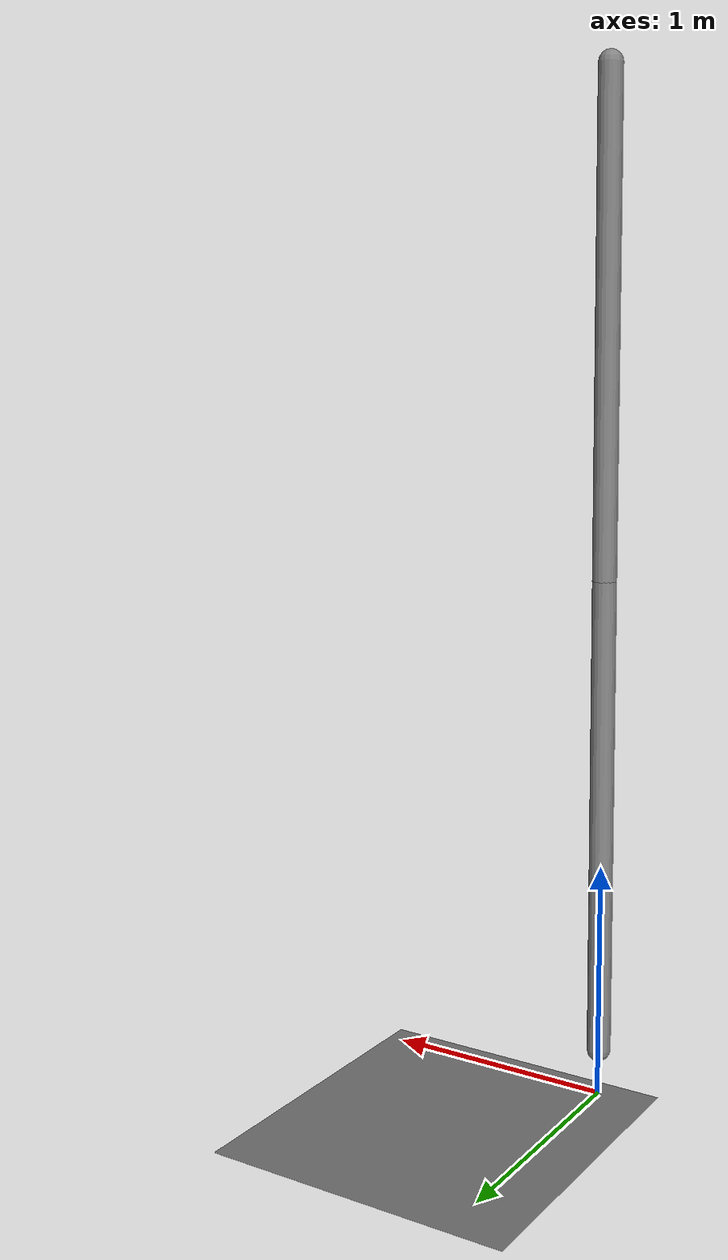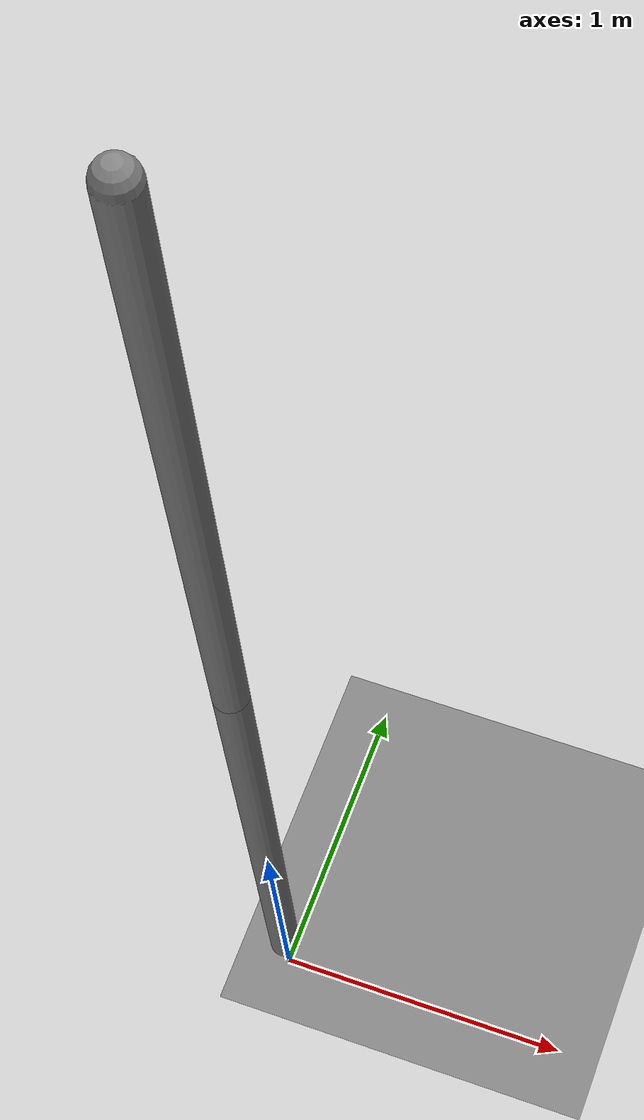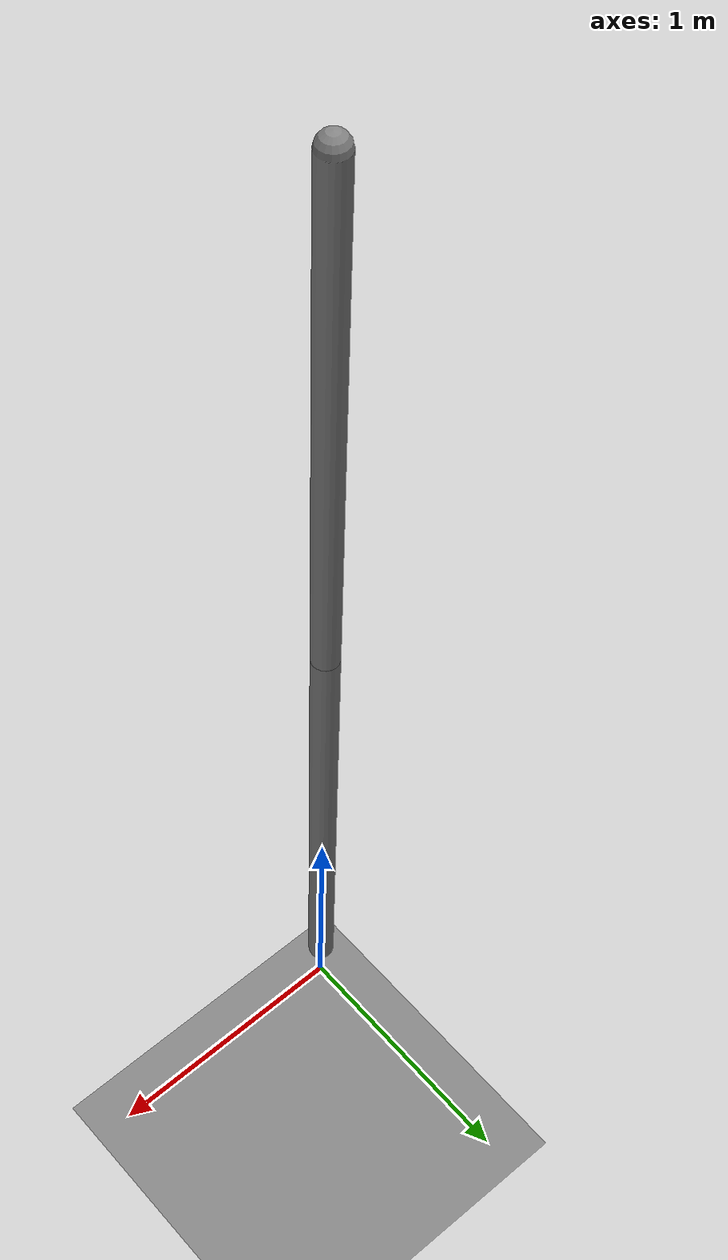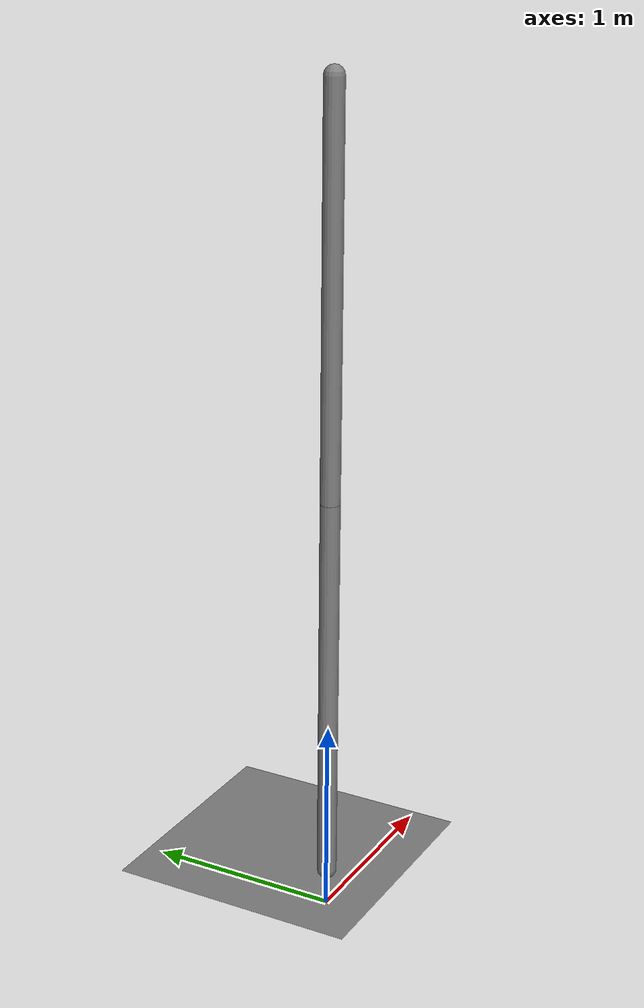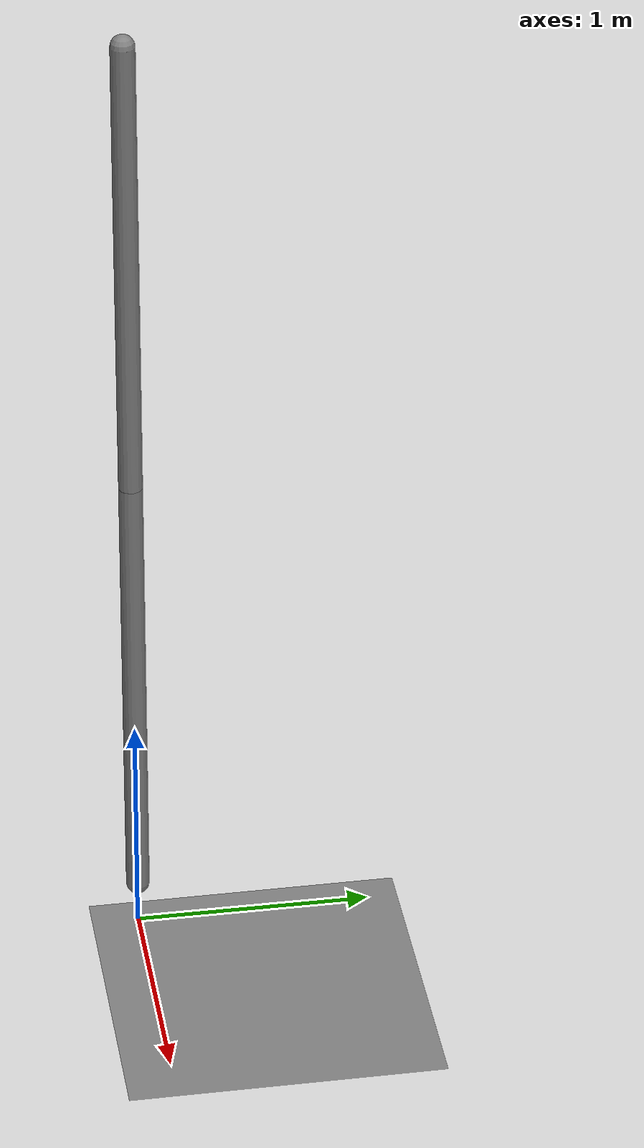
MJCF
<mujoco model="2DspacecraftEE">
  <option gravity="0 0 0"/>

  <contact>
    <pair geom1="link1_geom" geom2="surface" solref="0.02 1" friction="1 0.5 0.5"/>
  </contact>

  <worldbody>

    <body name="endmass" pos="0 0 0.2">
      <geom type="sphere" size="0.01" name="endmass_geom"/>
      <inertial pos="0 0 0" mass="1" diaginertia="0.001 0.001 0.001"/>
      <joint name="endmass" type="free"/>

      <body name="link1" pos="0 0 0">
        <geom type="capsule" fromto="0 0 0 0 0 2" size="0.05" name="link1_geom"/>
        <inertial pos="0 0 1" mass="1" diaginertia="0.33 0.33 0.00125"/>

        <body name="link2" pos="0 0 2">
          <geom type="capsule" fromto="0 0 0 0 0 2" size="0.05"/>
          <inertial pos="0 0 1" mass="1" diaginertia="0.33 0.33 0.00125"/>
          <joint name="tau1" type="hinge" axis="0 -1 0" pos="0 0 0"/>

          <body name="spacecraft" pos="0 0 2">
            <geom type="sphere" size="0.01" mass="420"/>
            <inertial pos="0 0 0" mass="420" diaginertia="280 280 280"/>
            <joint name="tau2" type="hinge" axis="0 -1 0" pos="0 0 0"/>
          </body>
        </body>
      </body>
    </body>

    <body name="terrain" pos="0 0 0">
      <geom name="surface" type="plane" pos="0 0 -0.05" size="5 5 1"/>
      <site name="endmass_site" pos="0 0 -0.1"/>
    </body>
  </worldbody>

    <actuator>
      <!-- Joint motors  -->
      <motor joint="tau1"/>
      <motor joint="tau2"/>
    </actuator>

    <sensor>
      <!-- Force sensor for end mass contact -->
      <force name="endmass_force" site="endmass_site"/>
    </sensor>
  </mujoco>
